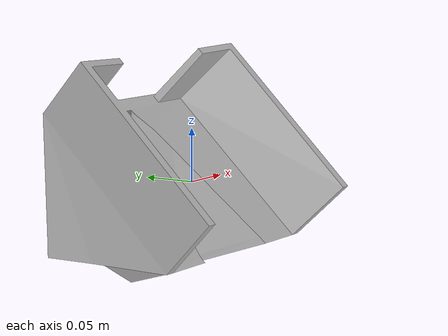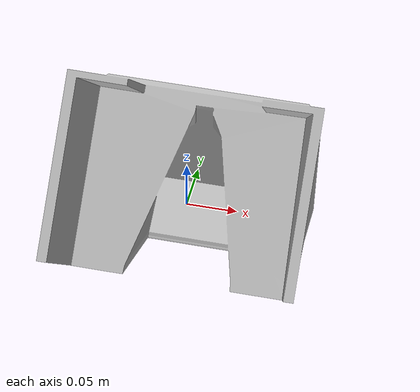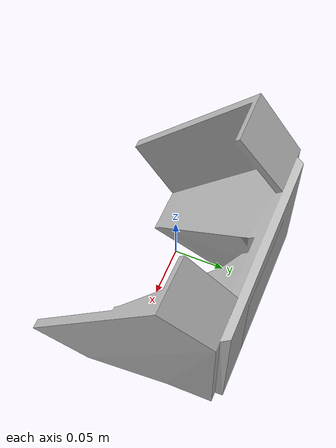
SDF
<?xml version="1.0" ?>
<sdf version="1.6">
  <model name="Goal case">
    <link name="link_0">
      <inertial>
        <mass>5000</mass>
      </inertial>
      <visual name="visual">
        <geometry>
          <mesh>
            <uri>meshes/goal_case.obj</uri>
          </mesh>
        </geometry>
      </visual>
      <collision name="collision_0">
        <geometry>
          <mesh>
            <uri>meshes/goal_case.obj</uri>
          </mesh>
        </geometry>
        <surface>
          <friction>
            <ode>
              <mu>0.1</mu>   <mu2>0.1</mu2> </ode>
          </friction>
        </surface>
      </collision>
    </link>
  </model>
</sdf>
